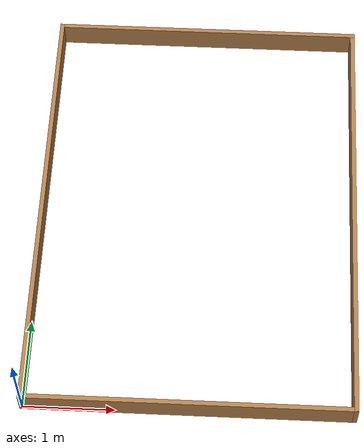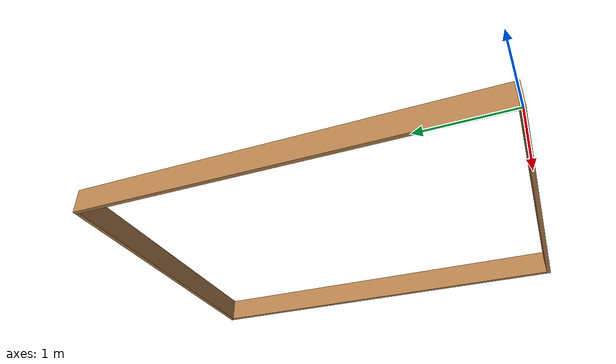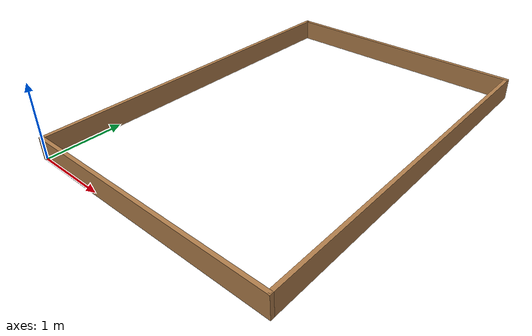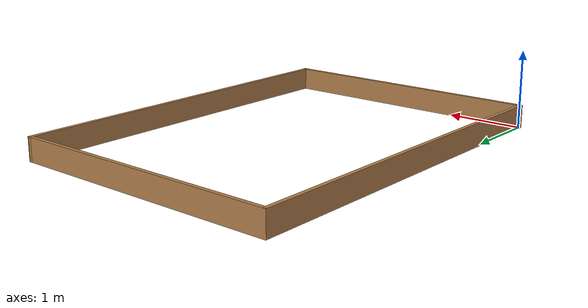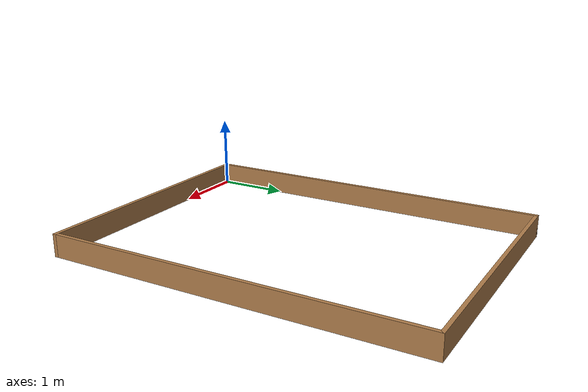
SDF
<?xml version='1.0'?>
<sdf version='1.6'>
  <model name='basic-environment'>
    <pose frame=''>1.775 2.45 0 0 -0 0</pose>
    <link name='Wall_13'>
      <collision name='Wall_13_Collision'>
        <geometry>
          <box>
            <size>3.6 0.05 0.3</size>
          </box>
        </geometry>
        <pose frame=''>0 0 0.15 0 -0 0</pose>
      </collision>
      <visual name='Wall_13_Visual'>
        <pose frame=''>0 0 0.15 0 -0 0</pose>
        <geometry>
          <box>
            <size>3.6 0.05 0.3</size>
          </box>
        </geometry>
        <material>
          <script>
            <uri>file://media/materials/scripts/gazebo.material</uri>
            <name>Gazebo/Wood</name>
          </script>
          <ambient>0.996078 0.47451 0.0196078 1</ambient>
        </material>
      </visual>
      <pose frame=''>0 -2.45 0 0 -0 0</pose>
    </link>
    <link name='Wall_15'>
      <collision name='Wall_15_Collision'>
        <geometry>
          <box>
            <size>4.95 0.05 0.3</size>
          </box>
        </geometry>
        <pose frame=''>0 0 0.15 0 -0 0</pose>
      </collision>
      <visual name='Wall_15_Visual'>
        <pose frame=''>0 0 0.15 0 -0 0</pose>
        <geometry>
          <box>
            <size>4.95 0.05 0.3</size>
          </box>
        </geometry>
        <material>
          <script>
            <uri>file://media/materials/scripts/gazebo.material</uri>
            <name>Gazebo/Wood</name>
          </script>
          <ambient>0.996078 0.47451 0.0196078 1</ambient>
        </material>
      </visual>
      <pose frame=''>-1.775 0 0 0 -0 1.5708</pose>
    </link>
    <link name='Wall_20'>
      <collision name='Wall_20_Collision'>
        <geometry>
          <box>
            <size>3.6 0.05 0.3</size>
          </box>
        </geometry>
        <pose frame=''>0 0 0.15 0 -0 0</pose>
      </collision>
      <visual name='Wall_20_Visual'>
        <pose frame=''>0 0 0.15 0 -0 0</pose>
        <geometry>
          <box>
            <size>3.6 0.05 0.3</size>
          </box>
        </geometry>
        <material>
          <script>
            <uri>file://media/materials/scripts/gazebo.material</uri>
            <name>Gazebo/Wood</name>
          </script>
          <ambient>0.996078 0.47451 0.0196078 1</ambient>
        </material>
      </visual>
      <pose frame=''>0 2.45 0 0 -0 0</pose>
    </link>
    <link name='Wall_22'>
      <collision name='Wall_22_Collision'>
        <geometry>
          <box>
            <size>4.95 0.05 0.3</size>
          </box>
        </geometry>
        <pose frame=''>0 0 0.15 0 -0 0</pose>
      </collision>
      <visual name='Wall_22_Visual'>
        <pose frame=''>0 0 0.15 0 -0 0</pose>
        <geometry>
          <box>
            <size>4.95 0.05 0.3</size>
          </box>
        </geometry>
        <material>
          <script>
            <uri>file://media/materials/scripts/gazebo.material</uri>
            <name>Gazebo/Wood</name>
          </script>
          <ambient>0.996078 0.47451 0.0196078 1</ambient>
        </material>
      </visual>
      <pose frame=''>1.775 0 0 0 0 -1.5708</pose>
    </link>
    <static>1</static>
  </model>
</sdf>
